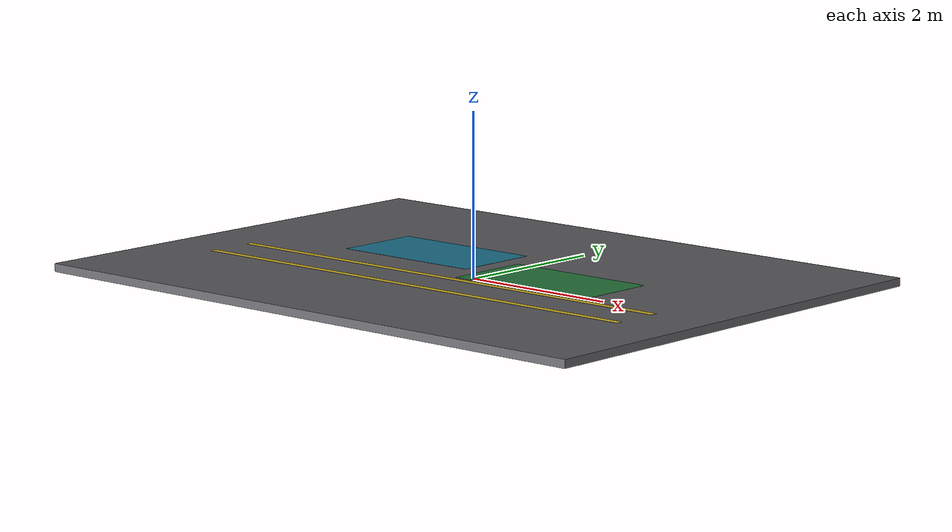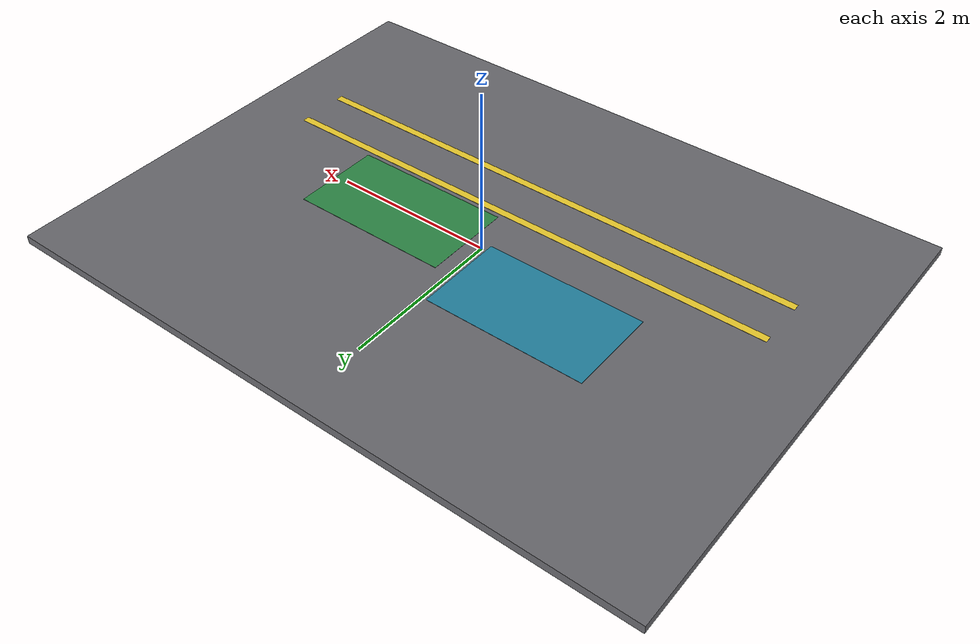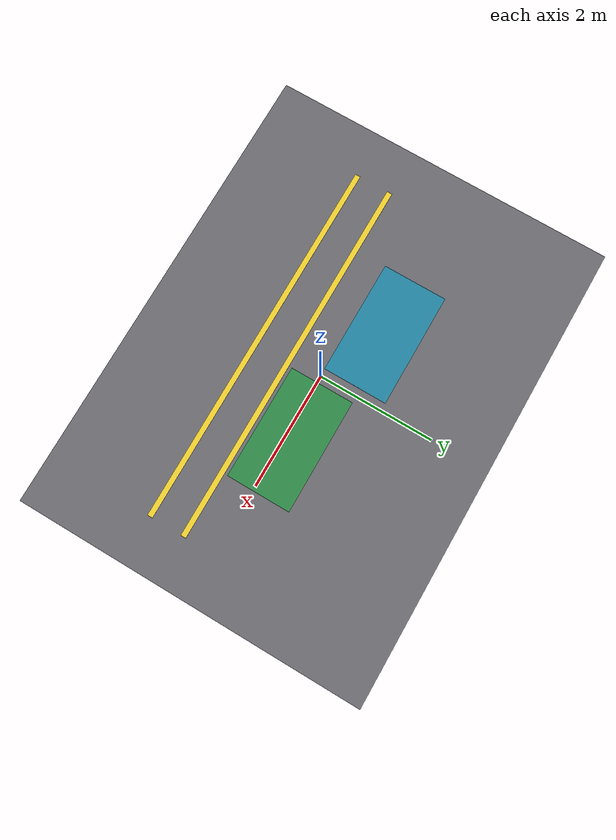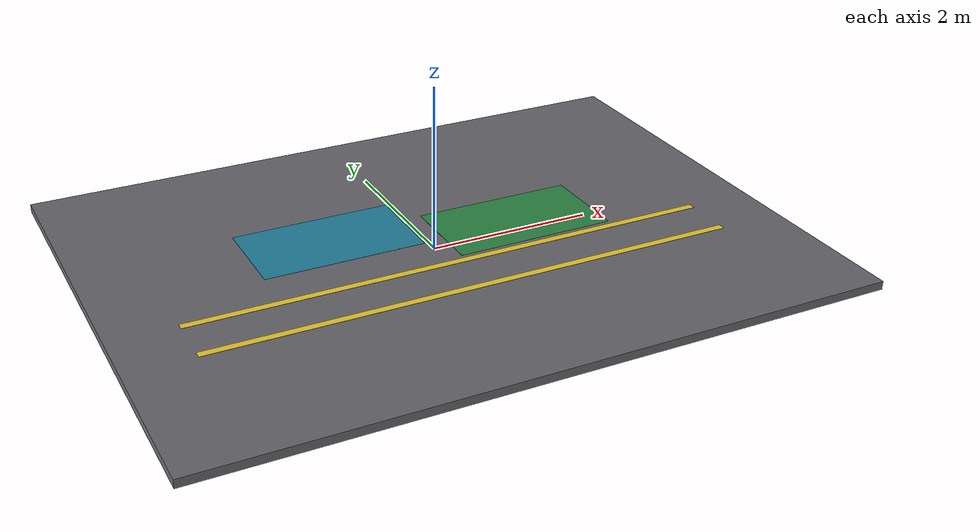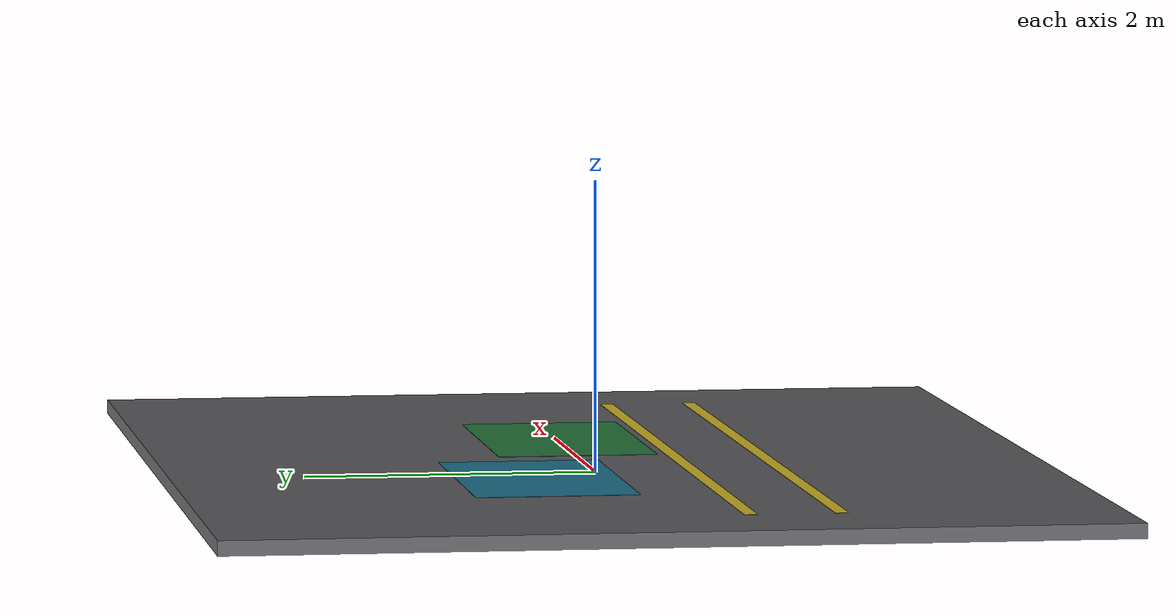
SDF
<?xml version="1.0"?>
<sdf version="1.6">
  <model name="factory_floor">
    <static>true</static>
    <link name="floor">
      <collision name="slab_collision">
        <pose>0 0 0.05 0 0 0</pose>
        <geometry>
          <box>
            <size>8.0 6.0 0.10</size>
          </box>
        </geometry>
      </collision>
      <visual name="slab_visual">
        <pose>0 0 0.05 0 0 0</pose>
        <geometry>
          <box>
            <size>8.0 6.0 0.10</size>
          </box>
        </geometry>
        <material>
          <ambient>0.36 0.36 0.38 1</ambient>
          <diffuse>0.42 0.42 0.44 1</diffuse>
          <specular>0.08 0.08 0.08 1</specular>
        </material>
      </visual>
      <visual name="lane_left">
        <pose>0 -1.15 0.101 0 0 0</pose>
        <geometry>
          <box>
            <size>6.4 0.09 0.002</size>
          </box>
        </geometry>
        <material>
          <ambient>0.92 0.78 0.15 1</ambient>
          <diffuse>0.95 0.82 0.18 1</diffuse>
        </material>
      </visual>
      <visual name="lane_right">
        <pose>0 -0.55 0.101 0 0 0</pose>
        <geometry>
          <box>
            <size>6.4 0.09 0.002</size>
          </box>
        </geometry>
        <material>
          <ambient>0.92 0.78 0.15 1</ambient>
          <diffuse>0.95 0.82 0.18 1</diffuse>
        </material>
      </visual>
      <visual name="staging_pad_source">
        <pose>-1.10 0.55 0.101 0 0 0</pose>
        <geometry>
          <box>
            <size>1.95 1.10 0.002</size>
          </box>
        </geometry>
        <material>
          <ambient>0.12 0.43 0.53 1</ambient>
          <diffuse>0.14 0.52 0.64 1</diffuse>
        </material>
      </visual>
      <visual name="staging_pad_dest">
        <pose>1.10 0.10 0.101 0 0 0</pose>
        <geometry>
          <box>
            <size>1.95 1.10 0.002</size>
          </box>
        </geometry>
        <material>
          <ambient>0.16 0.44 0.24 1</ambient>
          <diffuse>0.18 0.54 0.28 1</diffuse>
        </material>
      </visual>
    </link>
  </model>
</sdf>
